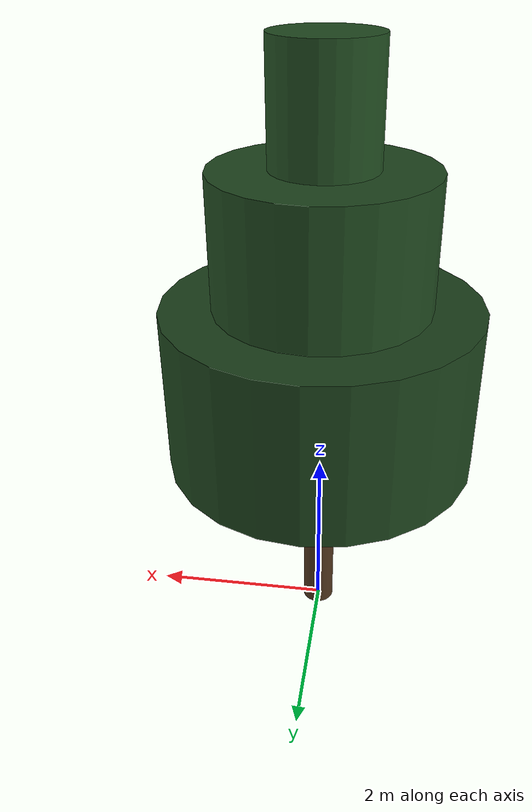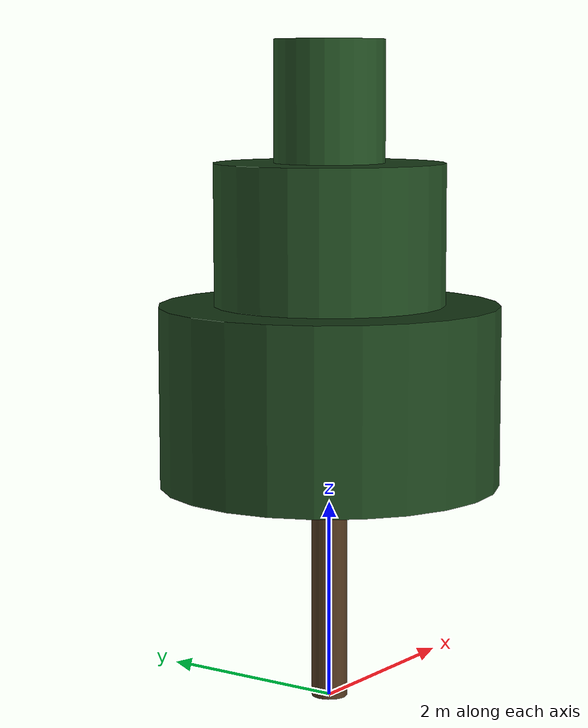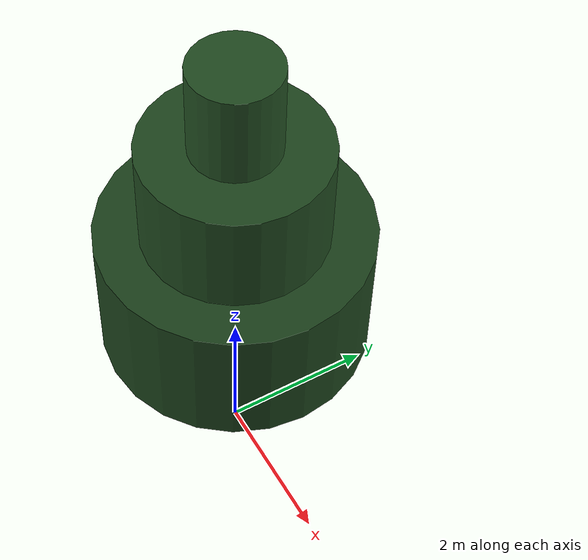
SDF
<?xml version="1.0" ?>
<!-- Conifer, built from tapering cylinders (SDF 1.9 has no cone primitive). -->
<sdf version="1.9">
  <model name="tree_pine">
    <static>true</static>
    <link name="trunk">
      <pose>0 0 1.2 0 0 0</pose>
      <visual name="v">
        <geometry><cylinder><radius>0.18</radius><length>2.4</length></cylinder></geometry>
        <material><ambient>0.22 0.14 0.08 1</ambient><diffuse>0.30 0.20 0.11 1</diffuse></material>
      </visual>
      <collision name="c">
        <geometry><cylinder><radius>0.18</radius><length>2.4</length></cylinder></geometry>
      </collision>
    </link>
    <link name="skirt">
      <pose>0 0 3.1 0 0 0</pose>
      <visual name="v">
        <geometry><cylinder><radius>1.7</radius><length>1.8</length></cylinder></geometry>
        <material><ambient>0.07 0.17 0.07 1</ambient><diffuse>0.11 0.26 0.11 1</diffuse></material>
      </visual>
    </link>
    <link name="mid">
      <pose>0 0 4.6 0 0 0</pose>
      <visual name="v">
        <geometry><cylinder><radius>1.15</radius><length>1.6</length></cylinder></geometry>
        <material><ambient>0.08 0.19 0.08 1</ambient><diffuse>0.12 0.28 0.12 1</diffuse></material>
      </visual>
    </link>
    <link name="top">
      <pose>0 0 5.9 0 0 0</pose>
      <visual name="v">
        <geometry><cylinder><radius>0.55</radius><length>1.4</length></cylinder></geometry>
        <material><ambient>0.09 0.21 0.09 1</ambient><diffuse>0.13 0.30 0.13 1</diffuse></material>
      </visual>
    </link>
  </model>
</sdf>
